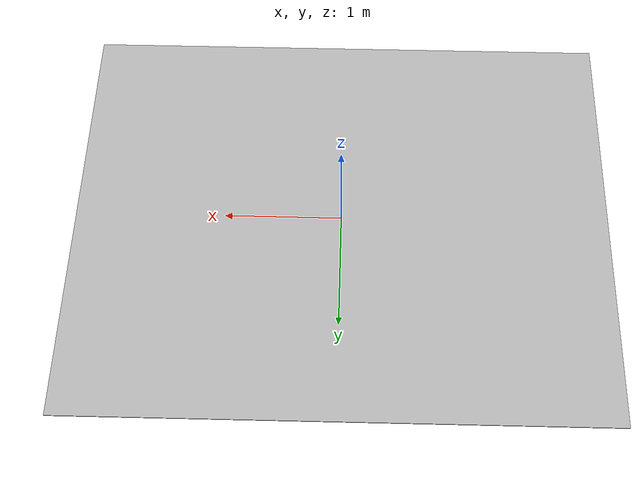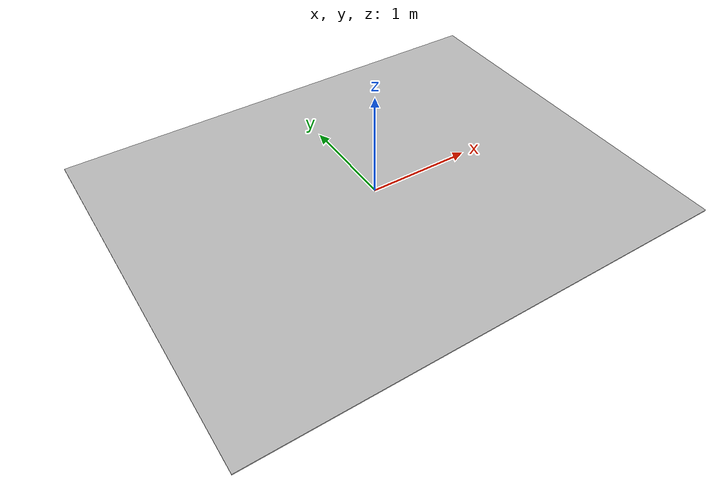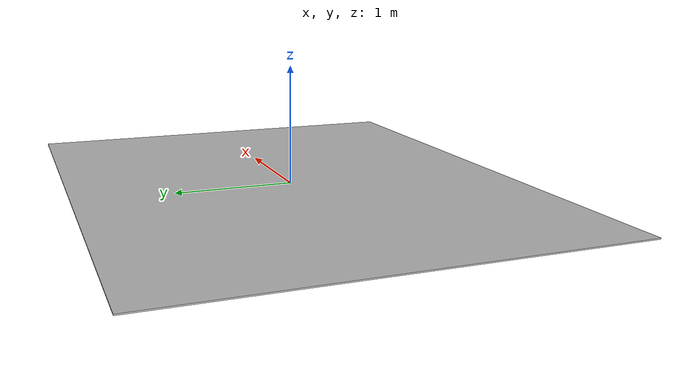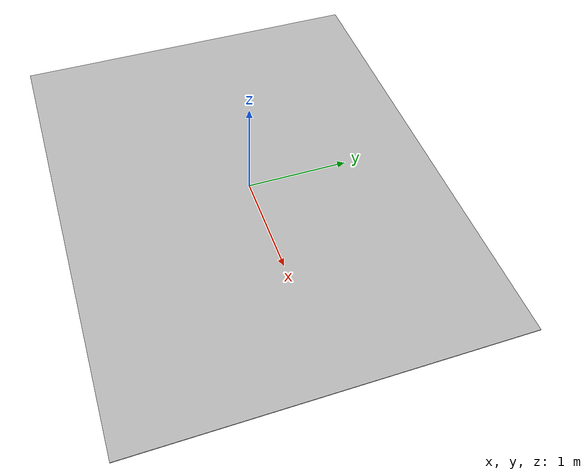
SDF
<?xml version='1.0'?>
<sdf version="1.4">
<model name="MiniMarsFloor">
  <pose>0 0 0.01 0 0 0</pose>
  <static>true</static>
    <link name="link">
      <collision name="collision">
        <geometry>
          <box>
            <size>4.57 3.66 0.01</size>
          </box>
        </geometry>
      </collision>
      <visual name="visual">
        <geometry>
          <box>
            <size>4.57 3.66 0.01</size>
          </box>
        </geometry>
		       <material>
			<script>
        <uri>model://MiniMarsFloor/materials/scripts</uri>
        <uri>model://MiniMarsFloor/materials/textures</uri>
        <name>MiniMarsFloor/Image</name>
      </script>
        	</material>
      </visual>
    </link>
  </model>
</sdf>
